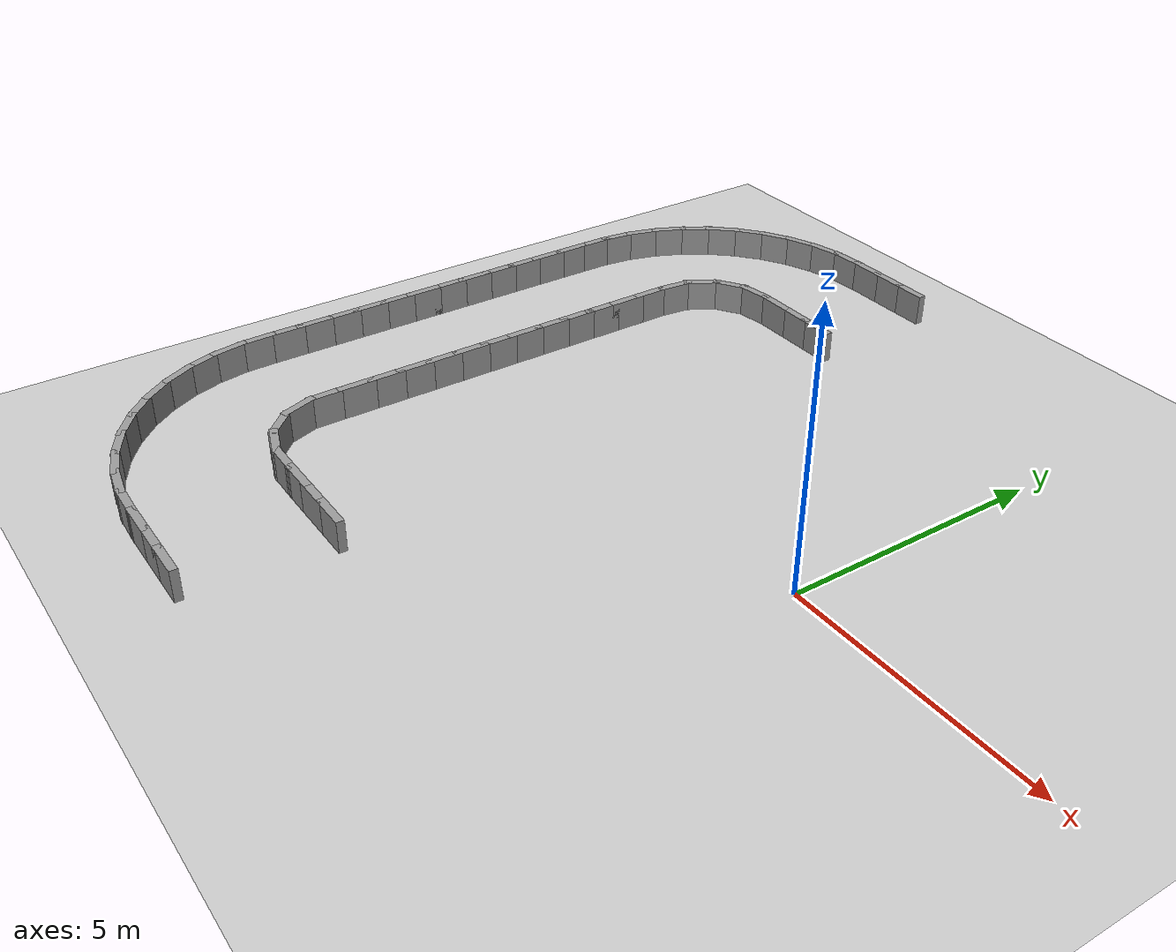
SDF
<sdf version="1.7">
 <world name="default">
  <model name="ground_plane">
   <static>1</static>
   <link name="link">
    <collision name="collision">
     <geometry><plane><normal>0 0 1</normal><size>100 100</size></plane></geometry>
     <surface><friction><ode><mu>100</mu><mu2>50</mu2></ode></friction></surface>
    </collision>
    <visual name="visual">
     <cast_shadows>0</cast_shadows>
     <geometry><plane><normal>0 0 1</normal><size>100 100</size></plane></geometry>
     <material>
      <script><uri>file://media/materials/scripts/gazebo.material</uri><name>Gazebo/Grey</name></script>
     </material>
    </visual>
   </link>
  </model>
  <model name="rand_rrect_02">
   <link name="Wall_24">
    <collision name="Wall_24_Collision">
     <geometry><box><size>0.7500 0.1500 0.6000</size></box></geometry>
     <pose>0 0 0.3000 0 -0 0</pose>
    </collision>
    <visual name="Wall_24_Visual">
     <pose>0 0 0.3000 0 -0 0</pose>
     <geometry><box><size>0.7500 0.1500 0.6000</size></box></geometry>
     <material>
      <script><uri>file://media/materials/scripts/gazebo.material</uri><name>Gazebo/Grey</name></script>
      <ambient>1 1 1 1</ambient>
     </material>
    </visual>
    <pose>-5.4874 5.2483 0 0 -0 3.14159</pose>
   </link>
   <link name="Wall_25">
    <collision name="Wall_25_Collision">
     <geometry><box><size>0.7500 0.1500 0.6000</size></box></geometry>
     <pose>0 0 0.3000 0 -0 0</pose>
    </collision>
    <visual name="Wall_25_Visual">
     <pose>0 0 0.3000 0 -0 0</pose>
     <geometry><box><size>0.7500 0.1500 0.6000</size></box></geometry>
     <material>
      <script><uri>file://media/materials/scripts/gazebo.material</uri><name>Gazebo/Grey</name></script>
      <ambient>1 1 1 1</ambient>
     </material>
    </visual>
    <pose>-6.0874 5.2483 0 0 -0 3.14159</pose>
   </link>
   <link name="Wall_26">
    <collision name="Wall_26_Collision">
     <geometry><box><size>0.7500 0.1500 0.6000</size></box></geometry>
     <pose>0 0 0.3000 0 -0 0</pose>
    </collision>
    <visual name="Wall_26_Visual">
     <pose>0 0 0.3000 0 -0 0</pose>
     <geometry><box><size>0.7500 0.1500 0.6000</size></box></geometry>
     <material>
      <script><uri>file://media/materials/scripts/gazebo.material</uri><name>Gazebo/Grey</name></script>
      <ambient>1 1 1 1</ambient>
     </material>
    </visual>
    <pose>-6.6874 5.2483 0 0 -0 3.14159</pose>
   </link>
   <link name="Wall_27">
    <collision name="Wall_27_Collision">
     <geometry><box><size>0.7459 0.1500 0.6000</size></box></geometry>
     <pose>0 0 0.3000 0 -0 0</pose>
    </collision>
    <visual name="Wall_27_Visual">
     <pose>0 0 0.3000 0 -0 0</pose>
     <geometry><box><size>0.7459 0.1500 0.6000</size></box></geometry>
     <material>
      <script><uri>file://media/materials/scripts/gazebo.material</uri><name>Gazebo/Grey</name></script>
      <ambient>1 1 1 1</ambient>
     </material>
    </visual>
    <pose>-7.2823 5.2060 0 0 -0 -2.99887</pose>
   </link>
   <link name="Wall_28">
    <collision name="Wall_28_Collision">
     <geometry><box><size>0.7450 0.1500 0.6000</size></box></geometry>
     <pose>0 0 0.3000 0 -0 0</pose>
    </collision>
    <visual name="Wall_28_Visual">
     <pose>0 0 0.3000 0 -0 0</pose>
     <geometry><box><size>0.7450 0.1500 0.6000</size></box></geometry>
     <material>
      <script><uri>file://media/materials/scripts/gazebo.material</uri><name>Gazebo/Grey</name></script>
      <ambient>1 1 1 1</ambient>
     </material>
    </visual>
    <pose>-7.8258 5.0002 0 0 -0 -2.56004</pose>
   </link>
   <link name="Wall_29">
    <collision name="Wall_29_Collision">
     <geometry><box><size>0.7450 0.1500 0.6000</size></box></geometry>
     <pose>0 0 0.3000 0 -0 0</pose>
    </collision>
    <visual name="Wall_29_Visual">
     <pose>0 0 0.3000 0 -0 0</pose>
     <geometry><box><size>0.7450 0.1500 0.6000</size></box></geometry>
     <material>
      <script><uri>file://media/materials/scripts/gazebo.material</uri><name>Gazebo/Grey</name></script>
      <ambient>1 1 1 1</ambient>
     </material>
    </visual>
    <pose>-8.2277 4.5818 0 0 -0 -2.11215</pose>
   </link>
   <link name="Wall_30">
    <collision name="Wall_30_Collision">
     <geometry><box><size>0.7467 0.1500 0.6000</size></box></geometry>
     <pose>0 0 0.3000 0 -0 0</pose>
    </collision>
    <visual name="Wall_30_Visual">
     <pose>0 0 0.3000 0 -0 0</pose>
     <geometry><box><size>0.7467 0.1500 0.6000</size></box></geometry>
     <material>
      <script><uri>file://media/materials/scripts/gazebo.material</uri><name>Gazebo/Grey</name></script>
      <ambient>1 1 1 1</ambient>
     </material>
    </visual>
    <pose>-8.4145 4.0304 0 0 -0 -1.68320</pose>
   </link>
   <link name="Wall_31">
    <collision name="Wall_31_Collision">
     <geometry><box><size>0.7500 0.1500 0.6000</size></box></geometry>
     <pose>0 0 0.3000 0 -0 0</pose>
    </collision>
    <visual name="Wall_31_Visual">
     <pose>0 0 0.3000 0 -0 0</pose>
     <geometry><box><size>0.7500 0.1500 0.6000</size></box></geometry>
     <material>
      <script><uri>file://media/materials/scripts/gazebo.material</uri><name>Gazebo/Grey</name></script>
      <ambient>1 1 1 1</ambient>
     </material>
    </visual>
    <pose>-8.4479 3.4339 0 0 -0 -1.57080</pose>
   </link>
   <link name="Wall_32">
    <collision name="Wall_32_Collision">
     <geometry><box><size>0.7500 0.1500 0.6000</size></box></geometry>
     <pose>0 0 0.3000 0 -0 0</pose>
    </collision>
    <visual name="Wall_32_Visual">
     <pose>0 0 0.3000 0 -0 0</pose>
     <geometry><box><size>0.7500 0.1500 0.6000</size></box></geometry>
     <material>
      <script><uri>file://media/materials/scripts/gazebo.material</uri><name>Gazebo/Grey</name></script>
      <ambient>1 1 1 1</ambient>
     </material>
    </visual>
    <pose>-8.4479 2.8339 0 0 -0 -1.57080</pose>
   </link>
   <link name="Wall_33">
    <collision name="Wall_33_Collision">
     <geometry><box><size>0.7500 0.1500 0.6000</size></box></geometry>
     <pose>0 0 0.3000 0 -0 0</pose>
    </collision>
    <visual name="Wall_33_Visual">
     <pose>0 0 0.3000 0 -0 0</pose>
     <geometry><box><size>0.7500 0.1500 0.6000</size></box></geometry>
     <material>
      <script><uri>file://media/materials/scripts/gazebo.material</uri><name>Gazebo/Grey</name></script>
      <ambient>1 1 1 1</ambient>
     </material>
    </visual>
    <pose>-8.4479 2.2339 0 0 -0 -1.57080</pose>
   </link>
   <link name="Wall_34">
    <collision name="Wall_34_Collision">
     <geometry><box><size>0.7500 0.1500 0.6000</size></box></geometry>
     <pose>0 0 0.3000 0 -0 0</pose>
    </collision>
    <visual name="Wall_34_Visual">
     <pose>0 0 0.3000 0 -0 0</pose>
     <geometry><box><size>0.7500 0.1500 0.6000</size></box></geometry>
     <material>
      <script><uri>file://media/materials/scripts/gazebo.material</uri><name>Gazebo/Grey</name></script>
      <ambient>1 1 1 1</ambient>
     </material>
    </visual>
    <pose>-8.4479 1.6339 0 0 -0 -1.57080</pose>
   </link>
   <link name="Wall_35">
    <collision name="Wall_35_Collision">
     <geometry><box><size>0.7500 0.1500 0.6000</size></box></geometry>
     <pose>0 0 0.3000 0 -0 0</pose>
    </collision>
    <visual name="Wall_35_Visual">
     <pose>0 0 0.3000 0 -0 0</pose>
     <geometry><box><size>0.7500 0.1500 0.6000</size></box></geometry>
     <material>
      <script><uri>file://media/materials/scripts/gazebo.material</uri><name>Gazebo/Grey</name></script>
      <ambient>1 1 1 1</ambient>
     </material>
    </visual>
    <pose>-8.4479 1.0339 0 0 -0 -1.57080</pose>
   </link>
   <link name="Wall_36">
    <collision name="Wall_36_Collision">
     <geometry><box><size>0.7500 0.1500 0.6000</size></box></geometry>
     <pose>0 0 0.3000 0 -0 0</pose>
    </collision>
    <visual name="Wall_36_Visual">
     <pose>0 0 0.3000 0 -0 0</pose>
     <geometry><box><size>0.7500 0.1500 0.6000</size></box></geometry>
     <material>
      <script><uri>file://media/materials/scripts/gazebo.material</uri><name>Gazebo/Grey</name></script>
      <ambient>1 1 1 1</ambient>
     </material>
    </visual>
    <pose>-8.4479 0.4339 0 0 -0 -1.57080</pose>
   </link>
   <link name="Wall_37">
    <collision name="Wall_37_Collision">
     <geometry><box><size>0.7500 0.1500 0.6000</size></box></geometry>
     <pose>0 0 0.3000 0 -0 0</pose>
    </collision>
    <visual name="Wall_37_Visual">
     <pose>0 0 0.3000 0 -0 0</pose>
     <geometry><box><size>0.7500 0.1500 0.6000</size></box></geometry>
     <material>
      <script><uri>file://media/materials/scripts/gazebo.material</uri><name>Gazebo/Grey</name></script>
      <ambient>1 1 1 1</ambient>
     </material>
    </visual>
    <pose>-8.4479 -0.1661 0 0 -0 -1.57080</pose>
   </link>
   <link name="Wall_38">
    <collision name="Wall_38_Collision">
     <geometry><box><size>0.7500 0.1500 0.6000</size></box></geometry>
     <pose>0 0 0.3000 0 -0 0</pose>
    </collision>
    <visual name="Wall_38_Visual">
     <pose>0 0 0.3000 0 -0 0</pose>
     <geometry><box><size>0.7500 0.1500 0.6000</size></box></geometry>
     <material>
      <script><uri>file://media/materials/scripts/gazebo.material</uri><name>Gazebo/Grey</name></script>
      <ambient>1 1 1 1</ambient>
     </material>
    </visual>
    <pose>-8.4479 -0.7661 0 0 -0 -1.57080</pose>
   </link>
   <link name="Wall_39">
    <collision name="Wall_39_Collision">
     <geometry><box><size>0.7500 0.1500 0.6000</size></box></geometry>
     <pose>0 0 0.3000 0 -0 0</pose>
    </collision>
    <visual name="Wall_39_Visual">
     <pose>0 0 0.3000 0 -0 0</pose>
     <geometry><box><size>0.7500 0.1500 0.6000</size></box></geometry>
     <material>
      <script><uri>file://media/materials/scripts/gazebo.material</uri><name>Gazebo/Grey</name></script>
      <ambient>1 1 1 1</ambient>
     </material>
    </visual>
    <pose>-8.4479 -1.3661 0 0 -0 -1.57080</pose>
   </link>
   <link name="Wall_40">
    <collision name="Wall_40_Collision">
     <geometry><box><size>0.7500 0.1500 0.6000</size></box></geometry>
     <pose>0 0 0.3000 0 -0 0</pose>
    </collision>
    <visual name="Wall_40_Visual">
     <pose>0 0 0.3000 0 -0 0</pose>
     <geometry><box><size>0.7500 0.1500 0.6000</size></box></geometry>
     <material>
      <script><uri>file://media/materials/scripts/gazebo.material</uri><name>Gazebo/Grey</name></script>
      <ambient>1 1 1 1</ambient>
     </material>
    </visual>
    <pose>-8.4479 -1.9661 0 0 -0 -1.57080</pose>
   </link>
   <link name="Wall_41">
    <collision name="Wall_41_Collision">
     <geometry><box><size>0.7500 0.1500 0.6000</size></box></geometry>
     <pose>0 0 0.3000 0 -0 0</pose>
    </collision>
    <visual name="Wall_41_Visual">
     <pose>0 0 0.3000 0 -0 0</pose>
     <geometry><box><size>0.7500 0.1500 0.6000</size></box></geometry>
     <material>
      <script><uri>file://media/materials/scripts/gazebo.material</uri><name>Gazebo/Grey</name></script>
      <ambient>1 1 1 1</ambient>
     </material>
    </visual>
    <pose>-8.4479 -2.5661 0 0 -0 -1.57080</pose>
   </link>
   <link name="Wall_42">
    <collision name="Wall_42_Collision">
     <geometry><box><size>0.7500 0.1500 0.6000</size></box></geometry>
     <pose>0 0 0.3000 0 -0 0</pose>
    </collision>
    <visual name="Wall_42_Visual">
     <pose>0 0 0.3000 0 -0 0</pose>
     <geometry><box><size>0.7500 0.1500 0.6000</size></box></geometry>
     <material>
      <script><uri>file://media/materials/scripts/gazebo.material</uri><name>Gazebo/Grey</name></script>
      <ambient>1 1 1 1</ambient>
     </material>
    </visual>
    <pose>-8.4479 -3.1661 0 0 -0 -1.57080</pose>
   </link>
   <link name="Wall_43">
    <collision name="Wall_43_Collision">
     <geometry><box><size>0.7497 0.1500 0.6000</size></box></geometry>
     <pose>0 0 0.3000 0 -0 0</pose>
    </collision>
    <visual name="Wall_43_Visual">
     <pose>0 0 0.3000 0 -0 0</pose>
     <geometry><box><size>0.7497 0.1500 0.6000</size></box></geometry>
     <material>
      <script><uri>file://media/materials/scripts/gazebo.material</uri><name>Gazebo/Grey</name></script>
      <ambient>1 1 1 1</ambient>
     </material>
    </visual>
    <pose>-8.4433 -3.7659 0 0 -0 -1.55539</pose>
   </link>
   <link name="Wall_44">
    <collision name="Wall_44_Collision">
     <geometry><box><size>0.7450 0.1500 0.6000</size></box></geometry>
     <pose>0 0 0.3000 0 -0 0</pose>
    </collision>
    <visual name="Wall_44_Visual">
     <pose>0 0 0.3000 0 -0 0</pose>
     <geometry><box><size>0.7450 0.1500 0.6000</size></box></geometry>
     <material>
      <script><uri>file://media/materials/scripts/gazebo.material</uri><name>Gazebo/Grey</name></script>
      <ambient>1 1 1 1</ambient>
     </material>
    </visual>
    <pose>-8.3391 -4.3460 0 0 -0 -1.22936</pose>
   </link>
   <link name="Wall_45">
    <collision name="Wall_45_Collision">
     <geometry><box><size>0.7450 0.1500 0.6000</size></box></geometry>
     <pose>0 0 0.3000 0 -0 0</pose>
    </collision>
    <visual name="Wall_45_Visual">
     <pose>0 0 0.3000 0 -0 0</pose>
     <geometry><box><size>0.7450 0.1500 0.6000</size></box></geometry>
     <material>
      <script><uri>file://media/materials/scripts/gazebo.material</uri><name>Gazebo/Grey</name></script>
      <ambient>1 1 1 1</ambient>
     </material>
    </visual>
    <pose>-8.0283 -4.8359 0 0 -0 -0.78149</pose>
   </link>
   <link name="Wall_46">
    <collision name="Wall_46_Collision">
     <geometry><box><size>0.7450 0.1500 0.6000</size></box></geometry>
     <pose>0 0 0.3000 0 -0 0</pose>
    </collision>
    <visual name="Wall_46_Visual">
     <pose>0 0 0.3000 0 -0 0</pose>
     <geometry><box><size>0.7450 0.1500 0.6000</size></box></geometry>
     <material>
      <script><uri>file://media/materials/scripts/gazebo.material</uri><name>Gazebo/Grey</name></script>
      <ambient>1 1 1 1</ambient>
     </material>
    </visual>
    <pose>-7.5360 -5.1429 0 0 -0 -0.33360</pose>
   </link>
   <link name="Wall_47">
    <collision name="Wall_47_Collision">
     <geometry><box><size>0.7498 0.1500 0.6000</size></box></geometry>
     <pose>0 0 0.3000 0 -0 0</pose>
    </collision>
    <visual name="Wall_47_Visual">
     <pose>0 0 0.3000 0 -0 0</pose>
     <geometry><box><size>0.7498 0.1500 0.6000</size></box></geometry>
     <material>
      <script><uri>file://media/materials/scripts/gazebo.material</uri><name>Gazebo/Grey</name></script>
      <ambient>1 1 1 1</ambient>
     </material>
    </visual>
    <pose>-6.9551 -5.2443 0 0 -0 -0.01342</pose>
   </link>
   <link name="Wall_48">
    <collision name="Wall_48_Collision">
     <geometry><box><size>0.7500 0.1500 0.6000</size></box></geometry>
     <pose>0 0 0.3000 0 -0 0</pose>
    </collision>
    <visual name="Wall_48_Visual">
     <pose>0 0 0.3000 0 -0 0</pose>
     <geometry><box><size>0.7500 0.1500 0.6000</size></box></geometry>
     <material>
      <script><uri>file://media/materials/scripts/gazebo.material</uri><name>Gazebo/Grey</name></script>
      <ambient>1 1 1 1</ambient>
     </material>
    </visual>
    <pose>-6.3552 -5.2483 0 0 -0 0.00000</pose>
   </link>
   <link name="Wall_49">
    <collision name="Wall_49_Collision">
     <geometry><box><size>0.7500 0.1500 0.6000</size></box></geometry>
     <pose>0 0 0.3000 0 -0 0</pose>
    </collision>
    <visual name="Wall_49_Visual">
     <pose>0 0 0.3000 0 -0 0</pose>
     <geometry><box><size>0.7500 0.1500 0.6000</size></box></geometry>
     <material>
      <script><uri>file://media/materials/scripts/gazebo.material</uri><name>Gazebo/Grey</name></script>
      <ambient>1 1 1 1</ambient>
     </material>
    </visual>
    <pose>-5.7552 -5.2483 0 0 -0 0.00000</pose>
   </link>
   <link name="Wall_50">
    <collision name="Wall_50_Collision">
     <geometry><box><size>0.7500 0.1500 0.6000</size></box></geometry>
     <pose>0 0 0.3000 0 -0 0</pose>
    </collision>
    <visual name="Wall_50_Visual">
     <pose>0 0 0.3000 0 -0 0</pose>
     <geometry><box><size>0.7500 0.1500 0.6000</size></box></geometry>
     <material>
      <script><uri>file://media/materials/scripts/gazebo.material</uri><name>Gazebo/Grey</name></script>
      <ambient>1 1 1 1</ambient>
     </material>
    </visual>
    <pose>-5.1552 -5.2483 0 0 -0 0.00000</pose>
   </link>
   <link name="Wall_118">
    <collision name="Wall_118_Collision">
     <geometry><box><size>0.7500 0.1500 0.6000</size></box></geometry>
     <pose>0 0 0.3000 0 -0 0</pose>
    </collision>
    <visual name="Wall_118_Visual">
     <pose>0 0 0.3000 0 -0 0</pose>
     <geometry><box><size>0.7500 0.1500 0.6000</size></box></geometry>
     <material>
      <script><uri>file://media/materials/scripts/gazebo.material</uri><name>Gazebo/Grey</name></script>
      <ambient>1 1 1 1</ambient>
     </material>
    </visual>
    <pose>-5.5969 7.8524 0 0 -0 3.14159</pose>
   </link>
   <link name="Wall_119">
    <collision name="Wall_119_Collision">
     <geometry><box><size>0.7500 0.1500 0.6000</size></box></geometry>
     <pose>0 0 0.3000 0 -0 0</pose>
    </collision>
    <visual name="Wall_119_Visual">
     <pose>0 0 0.3000 0 -0 0</pose>
     <geometry><box><size>0.7500 0.1500 0.6000</size></box></geometry>
     <material>
      <script><uri>file://media/materials/scripts/gazebo.material</uri><name>Gazebo/Grey</name></script>
      <ambient>1 1 1 1</ambient>
     </material>
    </visual>
    <pose>-6.1969 7.8524 0 0 -0 3.14159</pose>
   </link>
   <link name="Wall_120">
    <collision name="Wall_120_Collision">
     <geometry><box><size>0.7500 0.1500 0.6000</size></box></geometry>
     <pose>0 0 0.3000 0 -0 0</pose>
    </collision>
    <visual name="Wall_120_Visual">
     <pose>0 0 0.3000 0 -0 0</pose>
     <geometry><box><size>0.7500 0.1500 0.6000</size></box></geometry>
     <material>
      <script><uri>file://media/materials/scripts/gazebo.material</uri><name>Gazebo/Grey</name></script>
      <ambient>1 1 1 1</ambient>
     </material>
    </visual>
    <pose>-6.7969 7.8524 0 0 -0 3.14159</pose>
   </link>
   <link name="Wall_121">
    <collision name="Wall_121_Collision">
     <geometry><box><size>0.7494 0.1500 0.6000</size></box></geometry>
     <pose>0 0 0.3000 0 -0 0</pose>
    </collision>
    <visual name="Wall_121_Visual">
     <pose>0 0 0.3000 0 -0 0</pose>
     <geometry><box><size>0.7494 0.1500 0.6000</size></box></geometry>
     <material>
      <script><uri>file://media/materials/scripts/gazebo.material</uri><name>Gazebo/Grey</name></script>
      <ambient>1 1 1 1</ambient>
     </material>
    </visual>
    <pose>-7.3958 7.8305 0 0 -0 -3.06837</pose>
   </link>
   <link name="Wall_122">
    <collision name="Wall_122_Collision">
     <geometry><box><size>0.7494 0.1500 0.6000</size></box></geometry>
     <pose>0 0 0.3000 0 -0 0</pose>
    </collision>
    <visual name="Wall_122_Visual">
     <pose>0 0 0.3000 0 -0 0</pose>
     <geometry><box><size>0.7494 0.1500 0.6000</size></box></geometry>
     <material>
      <script><uri>file://media/materials/scripts/gazebo.material</uri><name>Gazebo/Grey</name></script>
      <ambient>1 1 1 1</ambient>
     </material>
    </visual>
    <pose>-7.9869 7.7416 0 0 -0 -2.91628</pose>
   </link>
   <link name="Wall_123">
    <collision name="Wall_123_Collision">
     <geometry><box><size>0.7494 0.1500 0.6000</size></box></geometry>
     <pose>0 0 0.3000 0 -0 0</pose>
    </collision>
    <visual name="Wall_123_Visual">
     <pose>0 0 0.3000 0 -0 0</pose>
     <geometry><box><size>0.7494 0.1500 0.6000</size></box></geometry>
     <material>
      <script><uri>file://media/materials/scripts/gazebo.material</uri><name>Gazebo/Grey</name></script>
      <ambient>1 1 1 1</ambient>
     </material>
    </visual>
    <pose>-8.5576 7.5642 0 0 -0 -2.76412</pose>
   </link>
   <link name="Wall_124">
    <collision name="Wall_124_Collision">
     <geometry><box><size>0.7494 0.1500 0.6000</size></box></geometry>
     <pose>0 0 0.3000 0 -0 0</pose>
    </collision>
    <visual name="Wall_124_Visual">
     <pose>0 0 0.3000 0 -0 0</pose>
     <geometry><box><size>0.7494 0.1500 0.6000</size></box></geometry>
     <material>
      <script><uri>file://media/materials/scripts/gazebo.material</uri><name>Gazebo/Grey</name></script>
      <ambient>1 1 1 1</ambient>
     </material>
    </visual>
    <pose>-9.0949 7.3023 0 0 -0 -2.61198</pose>
   </link>
   <link name="Wall_125">
    <collision name="Wall_125_Collision">
     <geometry><box><size>0.7494 0.1500 0.6000</size></box></geometry>
     <pose>0 0 0.3000 0 -0 0</pose>
    </collision>
    <visual name="Wall_125_Visual">
     <pose>0 0 0.3000 0 -0 0</pose>
     <geometry><box><size>0.7494 0.1500 0.6000</size></box></geometry>
     <material>
      <script><uri>file://media/materials/scripts/gazebo.material</uri><name>Gazebo/Grey</name></script>
      <ambient>1 1 1 1</ambient>
     </material>
    </visual>
    <pose>-9.5862 6.9620 0 0 -0 -2.45985</pose>
   </link>
   <link name="Wall_126">
    <collision name="Wall_126_Collision">
     <geometry><box><size>0.7494 0.1500 0.6000</size></box></geometry>
     <pose>0 0 0.3000 0 -0 0</pose>
    </collision>
    <visual name="Wall_126_Visual">
     <pose>0 0 0.3000 0 -0 0</pose>
     <geometry><box><size>0.7494 0.1500 0.6000</size></box></geometry>
     <material>
      <script><uri>file://media/materials/scripts/gazebo.material</uri><name>Gazebo/Grey</name></script>
      <ambient>1 1 1 1</ambient>
     </material>
    </visual>
    <pose>-10.0204 6.5512 0 0 -0 -2.30771</pose>
   </link>
   <link name="Wall_127">
    <collision name="Wall_127_Collision">
     <geometry><box><size>0.7494 0.1500 0.6000</size></box></geometry>
     <pose>0 0 0.3000 0 -0 0</pose>
    </collision>
    <visual name="Wall_127_Visual">
     <pose>0 0 0.3000 0 -0 0</pose>
     <geometry><box><size>0.7494 0.1500 0.6000</size></box></geometry>
     <material>
      <script><uri>file://media/materials/scripts/gazebo.material</uri><name>Gazebo/Grey</name></script>
      <ambient>1 1 1 1</ambient>
     </material>
    </visual>
    <pose>-10.3872 6.0794 0 0 -0 -2.15558</pose>
   </link>
   <link name="Wall_128">
    <collision name="Wall_128_Collision">
     <geometry><box><size>0.7494 0.1500 0.6000</size></box></geometry>
     <pose>0 0 0.3000 0 -0 0</pose>
    </collision>
    <visual name="Wall_128_Visual">
     <pose>0 0 0.3000 0 -0 0</pose>
     <geometry><box><size>0.7494 0.1500 0.6000</size></box></geometry>
     <material>
      <script><uri>file://media/materials/scripts/gazebo.material</uri><name>Gazebo/Grey</name></script>
      <ambient>1 1 1 1</ambient>
     </material>
    </visual>
    <pose>-10.6783 5.5574 0 0 -0 -2.00342</pose>
   </link>
   <link name="Wall_129">
    <collision name="Wall_129_Collision">
     <geometry><box><size>0.7494 0.1500 0.6000</size></box></geometry>
     <pose>0 0 0.3000 0 -0 0</pose>
    </collision>
    <visual name="Wall_129_Visual">
     <pose>0 0 0.3000 0 -0 0</pose>
     <geometry><box><size>0.7494 0.1500 0.6000</size></box></geometry>
     <material>
      <script><uri>file://media/materials/scripts/gazebo.material</uri><name>Gazebo/Grey</name></script>
      <ambient>1 1 1 1</ambient>
     </material>
    </visual>
    <pose>-10.8869 4.9973 0 0 -0 -1.85128</pose>
   </link>
   <link name="Wall_130">
    <collision name="Wall_130_Collision">
     <geometry><box><size>0.7494 0.1500 0.6000</size></box></geometry>
     <pose>0 0 0.3000 0 -0 0</pose>
    </collision>
    <visual name="Wall_130_Visual">
     <pose>0 0 0.3000 0 -0 0</pose>
     <geometry><box><size>0.7494 0.1500 0.6000</size></box></geometry>
     <material>
      <script><uri>file://media/materials/scripts/gazebo.material</uri><name>Gazebo/Grey</name></script>
      <ambient>1 1 1 1</ambient>
     </material>
    </visual>
    <pose>-11.0083 4.4120 0 0 -0 -1.69915</pose>
   </link>
   <link name="Wall_131">
    <collision name="Wall_131_Collision">
     <geometry><box><size>0.7499 0.1500 0.6000</size></box></geometry>
     <pose>0 0 0.3000 0 -0 0</pose>
    </collision>
    <visual name="Wall_131_Visual">
     <pose>0 0 0.3000 0 -0 0</pose>
     <geometry><box><size>0.7499 0.1500 0.6000</size></box></geometry>
     <material>
      <script><uri>file://media/materials/scripts/gazebo.material</uri><name>Gazebo/Grey</name></script>
      <ambient>1 1 1 1</ambient>
     </material>
    </visual>
    <pose>-11.0493 3.8148 0 0 -0 -1.57979</pose>
   </link>
   <link name="Wall_132">
    <collision name="Wall_132_Collision">
     <geometry><box><size>0.7500 0.1500 0.6000</size></box></geometry>
     <pose>0 0 0.3000 0 -0 0</pose>
    </collision>
    <visual name="Wall_132_Visual">
     <pose>0 0 0.3000 0 -0 0</pose>
     <geometry><box><size>0.7500 0.1500 0.6000</size></box></geometry>
     <material>
      <script><uri>file://media/materials/scripts/gazebo.material</uri><name>Gazebo/Grey</name></script>
      <ambient>1 1 1 1</ambient>
     </material>
    </visual>
    <pose>-11.0520 3.2149 0 0 -0 -1.57080</pose>
   </link>
   <link name="Wall_133">
    <collision name="Wall_133_Collision">
     <geometry><box><size>0.7500 0.1500 0.6000</size></box></geometry>
     <pose>0 0 0.3000 0 -0 0</pose>
    </collision>
    <visual name="Wall_133_Visual">
     <pose>0 0 0.3000 0 -0 0</pose>
     <geometry><box><size>0.7500 0.1500 0.6000</size></box></geometry>
     <material>
      <script><uri>file://media/materials/scripts/gazebo.material</uri><name>Gazebo/Grey</name></script>
      <ambient>1 1 1 1</ambient>
     </material>
    </visual>
    <pose>-11.0520 2.6149 0 0 -0 -1.57080</pose>
   </link>
   <link name="Wall_134">
    <collision name="Wall_134_Collision">
     <geometry><box><size>0.7500 0.1500 0.6000</size></box></geometry>
     <pose>0 0 0.3000 0 -0 0</pose>
    </collision>
    <visual name="Wall_134_Visual">
     <pose>0 0 0.3000 0 -0 0</pose>
     <geometry><box><size>0.7500 0.1500 0.6000</size></box></geometry>
     <material>
      <script><uri>file://media/materials/scripts/gazebo.material</uri><name>Gazebo/Grey</name></script>
      <ambient>1 1 1 1</ambient>
     </material>
    </visual>
    <pose>-11.0520 2.0149 0 0 -0 -1.57080</pose>
   </link>
   <link name="Wall_135">
    <collision name="Wall_135_Collision">
     <geometry><box><size>0.7500 0.1500 0.6000</size></box></geometry>
     <pose>0 0 0.3000 0 -0 0</pose>
    </collision>
    <visual name="Wall_135_Visual">
     <pose>0 0 0.3000 0 -0 0</pose>
     <geometry><box><size>0.7500 0.1500 0.6000</size></box></geometry>
     <material>
      <script><uri>file://media/materials/scripts/gazebo.material</uri><name>Gazebo/Grey</name></script>
      <ambient>1 1 1 1</ambient>
     </material>
    </visual>
    <pose>-11.0520 1.4149 0 0 -0 -1.57080</pose>
   </link>
   <link name="Wall_136">
    <collision name="Wall_136_Collision">
     <geometry><box><size>0.7500 0.1500 0.6000</size></box></geometry>
     <pose>0 0 0.3000 0 -0 0</pose>
    </collision>
    <visual name="Wall_136_Visual">
     <pose>0 0 0.3000 0 -0 0</pose>
     <geometry><box><size>0.7500 0.1500 0.6000</size></box></geometry>
     <material>
      <script><uri>file://media/materials/scripts/gazebo.material</uri><name>Gazebo/Grey</name></script>
      <ambient>1 1 1 1</ambient>
     </material>
    </visual>
    <pose>-11.0520 0.8149 0 0 -0 -1.57080</pose>
   </link>
   <link name="Wall_137">
    <collision name="Wall_137_Collision">
     <geometry><box><size>0.7500 0.1500 0.6000</size></box></geometry>
     <pose>0 0 0.3000 0 -0 0</pose>
    </collision>
    <visual name="Wall_137_Visual">
     <pose>0 0 0.3000 0 -0 0</pose>
     <geometry><box><size>0.7500 0.1500 0.6000</size></box></geometry>
     <material>
      <script><uri>file://media/materials/scripts/gazebo.material</uri><name>Gazebo/Grey</name></script>
      <ambient>1 1 1 1</ambient>
     </material>
    </visual>
    <pose>-11.0520 0.2149 0 0 -0 -1.57080</pose>
   </link>
   <link name="Wall_138">
    <collision name="Wall_138_Collision">
     <geometry><box><size>0.7500 0.1500 0.6000</size></box></geometry>
     <pose>0 0 0.3000 0 -0 0</pose>
    </collision>
    <visual name="Wall_138_Visual">
     <pose>0 0 0.3000 0 -0 0</pose>
     <geometry><box><size>0.7500 0.1500 0.6000</size></box></geometry>
     <material>
      <script><uri>file://media/materials/scripts/gazebo.material</uri><name>Gazebo/Grey</name></script>
      <ambient>1 1 1 1</ambient>
     </material>
    </visual>
    <pose>-11.0520 -0.3851 0 0 -0 -1.57080</pose>
   </link>
   <link name="Wall_139">
    <collision name="Wall_139_Collision">
     <geometry><box><size>0.7500 0.1500 0.6000</size></box></geometry>
     <pose>0 0 0.3000 0 -0 0</pose>
    </collision>
    <visual name="Wall_139_Visual">
     <pose>0 0 0.3000 0 -0 0</pose>
     <geometry><box><size>0.7500 0.1500 0.6000</size></box></geometry>
     <material>
      <script><uri>file://media/materials/scripts/gazebo.material</uri><name>Gazebo/Grey</name></script>
      <ambient>1 1 1 1</ambient>
     </material>
    </visual>
    <pose>-11.0520 -0.9851 0 0 -0 -1.57080</pose>
   </link>
   <link name="Wall_140">
    <collision name="Wall_140_Collision">
     <geometry><box><size>0.7500 0.1500 0.6000</size></box></geometry>
     <pose>0 0 0.3000 0 -0 0</pose>
    </collision>
    <visual name="Wall_140_Visual">
     <pose>0 0 0.3000 0 -0 0</pose>
     <geometry><box><size>0.7500 0.1500 0.6000</size></box></geometry>
     <material>
      <script><uri>file://media/materials/scripts/gazebo.material</uri><name>Gazebo/Grey</name></script>
      <ambient>1 1 1 1</ambient>
     </material>
    </visual>
    <pose>-11.0520 -1.5851 0 0 -0 -1.57080</pose>
   </link>
   <link name="Wall_141">
    <collision name="Wall_141_Collision">
     <geometry><box><size>0.7500 0.1500 0.6000</size></box></geometry>
     <pose>0 0 0.3000 0 -0 0</pose>
    </collision>
    <visual name="Wall_141_Visual">
     <pose>0 0 0.3000 0 -0 0</pose>
     <geometry><box><size>0.7500 0.1500 0.6000</size></box></geometry>
     <material>
      <script><uri>file://media/materials/scripts/gazebo.material</uri><name>Gazebo/Grey</name></script>
      <ambient>1 1 1 1</ambient>
     </material>
    </visual>
    <pose>-11.0520 -2.1851 0 0 -0 -1.57080</pose>
   </link>
   <link name="Wall_142">
    <collision name="Wall_142_Collision">
     <geometry><box><size>0.7500 0.1500 0.6000</size></box></geometry>
     <pose>0 0 0.3000 0 -0 0</pose>
    </collision>
    <visual name="Wall_142_Visual">
     <pose>0 0 0.3000 0 -0 0</pose>
     <geometry><box><size>0.7500 0.1500 0.6000</size></box></geometry>
     <material>
      <script><uri>file://media/materials/scripts/gazebo.material</uri><name>Gazebo/Grey</name></script>
      <ambient>1 1 1 1</ambient>
     </material>
    </visual>
    <pose>-11.0520 -2.7851 0 0 -0 -1.57080</pose>
   </link>
   <link name="Wall_143">
    <collision name="Wall_143_Collision">
     <geometry><box><size>0.7500 0.1500 0.6000</size></box></geometry>
     <pose>0 0 0.3000 0 -0 0</pose>
    </collision>
    <visual name="Wall_143_Visual">
     <pose>0 0 0.3000 0 -0 0</pose>
     <geometry><box><size>0.7500 0.1500 0.6000</size></box></geometry>
     <material>
      <script><uri>file://media/materials/scripts/gazebo.material</uri><name>Gazebo/Grey</name></script>
      <ambient>1 1 1 1</ambient>
     </material>
    </visual>
    <pose>-11.0520 -3.3851 0 0 -0 -1.57080</pose>
   </link>
   <link name="Wall_144">
    <collision name="Wall_144_Collision">
     <geometry><box><size>0.7497 0.1500 0.6000</size></box></geometry>
     <pose>0 0 0.3000 0 -0 0</pose>
    </collision>
    <visual name="Wall_144_Visual">
     <pose>0 0 0.3000 0 -0 0</pose>
     <geometry><box><size>0.7497 0.1500 0.6000</size></box></geometry>
     <material>
      <script><uri>file://media/materials/scripts/gazebo.material</uri><name>Gazebo/Grey</name></script>
      <ambient>1 1 1 1</ambient>
     </material>
    </visual>
    <pose>-11.0430 -3.9848 0 0 -0 -1.54084</pose>
   </link>
   <link name="Wall_145">
    <collision name="Wall_145_Collision">
     <geometry><box><size>0.7494 0.1500 0.6000</size></box></geometry>
     <pose>0 0 0.3000 0 -0 0</pose>
    </collision>
    <visual name="Wall_145_Visual">
     <pose>0 0 0.3000 0 -0 0</pose>
     <geometry><box><size>0.7494 0.1500 0.6000</size></box></geometry>
     <material>
      <script><uri>file://media/materials/scripts/gazebo.material</uri><name>Gazebo/Grey</name></script>
      <ambient>1 1 1 1</ambient>
     </material>
    </visual>
    <pose>-10.9829 -4.5799 0 0 -0 -1.39928</pose>
   </link>
   <link name="Wall_146">
    <collision name="Wall_146_Collision">
     <geometry><box><size>0.7494 0.1500 0.6000</size></box></geometry>
     <pose>0 0 0.3000 0 -0 0</pose>
    </collision>
    <visual name="Wall_146_Visual">
     <pose>0 0 0.3000 0 -0 0</pose>
     <geometry><box><size>0.7494 0.1500 0.6000</size></box></geometry>
     <material>
      <script><uri>file://media/materials/scripts/gazebo.material</uri><name>Gazebo/Grey</name></script>
      <ambient>1 1 1 1</ambient>
     </material>
    </visual>
    <pose>-10.8364 -5.1593 0 0 -0 -1.24712</pose>
   </link>
   <link name="Wall_147">
    <collision name="Wall_147_Collision">
     <geometry><box><size>0.7494 0.1500 0.6000</size></box></geometry>
     <pose>0 0 0.3000 0 -0 0</pose>
    </collision>
    <visual name="Wall_147_Visual">
     <pose>0 0 0.3000 0 -0 0</pose>
     <geometry><box><size>0.7494 0.1500 0.6000</size></box></geometry>
     <material>
      <script><uri>file://media/materials/scripts/gazebo.material</uri><name>Gazebo/Grey</name></script>
      <ambient>1 1 1 1</ambient>
     </material>
    </visual>
    <pose>-10.6038 -5.7099 0 0 -0 -1.09498</pose>
   </link>
   <link name="Wall_148">
    <collision name="Wall_148_Collision">
     <geometry><box><size>0.7494 0.1500 0.6000</size></box></geometry>
     <pose>0 0 0.3000 0 -0 0</pose>
    </collision>
    <visual name="Wall_148_Visual">
     <pose>0 0 0.3000 0 -0 0</pose>
     <geometry><box><size>0.7494 0.1500 0.6000</size></box></geometry>
     <material>
      <script><uri>file://media/materials/scripts/gazebo.material</uri><name>Gazebo/Grey</name></script>
      <ambient>1 1 1 1</ambient>
     </material>
    </visual>
    <pose>-10.2905 -6.2189 0 0 -0 -0.94285</pose>
   </link>
   <link name="Wall_149">
    <collision name="Wall_149_Collision">
     <geometry><box><size>0.7494 0.1500 0.6000</size></box></geometry>
     <pose>0 0 0.3000 0 -0 0</pose>
    </collision>
    <visual name="Wall_149_Visual">
     <pose>0 0 0.3000 0 -0 0</pose>
     <geometry><box><size>0.7494 0.1500 0.6000</size></box></geometry>
     <material>
      <script><uri>file://media/materials/scripts/gazebo.material</uri><name>Gazebo/Grey</name></script>
      <ambient>1 1 1 1</ambient>
     </material>
    </visual>
    <pose>-9.9036 -6.6744 0 0 -0 -0.79071</pose>
   </link>
   <link name="Wall_150">
    <collision name="Wall_150_Collision">
     <geometry><box><size>0.7494 0.1500 0.6000</size></box></geometry>
     <pose>0 0 0.3000 0 -0 0</pose>
    </collision>
    <visual name="Wall_150_Visual">
     <pose>0 0 0.3000 0 -0 0</pose>
     <geometry><box><size>0.7494 0.1500 0.6000</size></box></geometry>
     <material>
      <script><uri>file://media/materials/scripts/gazebo.material</uri><name>Gazebo/Grey</name></script>
      <ambient>1 1 1 1</ambient>
     </material>
    </visual>
    <pose>-9.4521 -7.0661 0 0 -0 -0.63858</pose>
   </link>
   <link name="Wall_151">
    <collision name="Wall_151_Collision">
     <geometry><box><size>0.7494 0.1500 0.6000</size></box></geometry>
     <pose>0 0 0.3000 0 -0 0</pose>
    </collision>
    <visual name="Wall_151_Visual">
     <pose>0 0 0.3000 0 -0 0</pose>
     <geometry><box><size>0.7494 0.1500 0.6000</size></box></geometry>
     <material>
      <script><uri>file://media/materials/scripts/gazebo.material</uri><name>Gazebo/Grey</name></script>
      <ambient>1 1 1 1</ambient>
     </material>
    </visual>
    <pose>-8.9466 -7.3849 0 0 -0 -0.48642</pose>
   </link>
   <link name="Wall_152">
    <collision name="Wall_152_Collision">
     <geometry><box><size>0.7494 0.1500 0.6000</size></box></geometry>
     <pose>0 0 0.3000 0 -0 0</pose>
    </collision>
    <visual name="Wall_152_Visual">
     <pose>0 0 0.3000 0 -0 0</pose>
     <geometry><box><size>0.7494 0.1500 0.6000</size></box></geometry>
     <material>
      <script><uri>file://media/materials/scripts/gazebo.material</uri><name>Gazebo/Grey</name></script>
      <ambient>1 1 1 1</ambient>
     </material>
    </visual>
    <pose>-8.3985 -7.6233 0 0 -0 -0.33428</pose>
   </link>
   <link name="Wall_153">
    <collision name="Wall_153_Collision">
     <geometry><box><size>0.7494 0.1500 0.6000</size></box></geometry>
     <pose>0 0 0.3000 0 -0 0</pose>
    </collision>
    <visual name="Wall_153_Visual">
     <pose>0 0 0.3000 0 -0 0</pose>
     <geometry><box><size>0.7494 0.1500 0.6000</size></box></geometry>
     <material>
      <script><uri>file://media/materials/scripts/gazebo.material</uri><name>Gazebo/Grey</name></script>
      <ambient>1 1 1 1</ambient>
     </material>
    </visual>
    <pose>-7.8206 -7.7759 0 0 -0 -0.18215</pose>
   </link>
   <link name="Wall_154">
    <collision name="Wall_154_Collision">
     <geometry><box><size>0.7496 0.1500 0.6000</size></box></geometry>
     <pose>0 0 0.3000 0 -0 0</pose>
    </collision>
    <visual name="Wall_154_Visual">
     <pose>0 0 0.3000 0 -0 0</pose>
     <geometry><box><size>0.7496 0.1500 0.6000</size></box></geometry>
     <material>
      <script><uri>file://media/materials/scripts/gazebo.material</uri><name>Gazebo/Grey</name></script>
      <ambient>1 1 1 1</ambient>
     </material>
    </visual>
    <pose>-7.2263 -7.8413 0 0 -0 -0.03699</pose>
   </link>
   <link name="Wall_155">
    <collision name="Wall_155_Collision">
     <geometry><box><size>0.7500 0.1500 0.6000</size></box></geometry>
     <pose>0 0 0.3000 0 -0 0</pose>
    </collision>
    <visual name="Wall_155_Visual">
     <pose>0 0 0.3000 0 -0 0</pose>
     <geometry><box><size>0.7500 0.1500 0.6000</size></box></geometry>
     <material>
      <script><uri>file://media/materials/scripts/gazebo.material</uri><name>Gazebo/Grey</name></script>
      <ambient>1 1 1 1</ambient>
     </material>
    </visual>
    <pose>-6.6266 -7.8524 0 0 -0 0.00000</pose>
   </link>
   <link name="Wall_156">
    <collision name="Wall_156_Collision">
     <geometry><box><size>0.7500 0.1500 0.6000</size></box></geometry>
     <pose>0 0 0.3000 0 -0 0</pose>
    </collision>
    <visual name="Wall_156_Visual">
     <pose>0 0 0.3000 0 -0 0</pose>
     <geometry><box><size>0.7500 0.1500 0.6000</size></box></geometry>
     <material>
      <script><uri>file://media/materials/scripts/gazebo.material</uri><name>Gazebo/Grey</name></script>
      <ambient>1 1 1 1</ambient>
     </material>
    </visual>
    <pose>-6.0266 -7.8524 0 0 -0 0.00000</pose>
   </link>
   <link name="Wall_157">
    <collision name="Wall_157_Collision">
     <geometry><box><size>0.7500 0.1500 0.6000</size></box></geometry>
     <pose>0 0 0.3000 0 -0 0</pose>
    </collision>
    <visual name="Wall_157_Visual">
     <pose>0 0 0.3000 0 -0 0</pose>
     <geometry><box><size>0.7500 0.1500 0.6000</size></box></geometry>
     <material>
      <script><uri>file://media/materials/scripts/gazebo.material</uri><name>Gazebo/Grey</name></script>
      <ambient>1 1 1 1</ambient>
     </material>
    </visual>
    <pose>-5.4266 -7.8524 0 0 -0 0.00000</pose>
   </link>
   <static>1</static>
  </model>
 </world>
</sdf>
